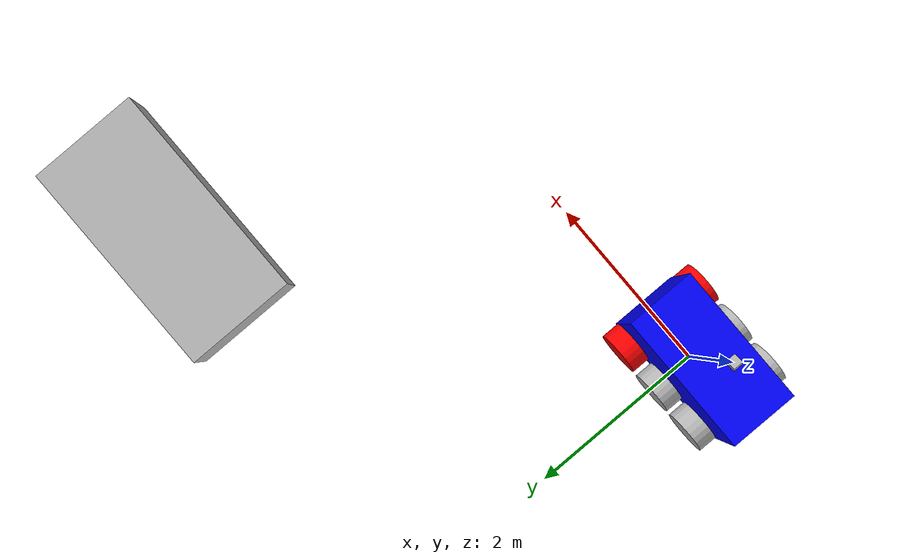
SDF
<?xml version="1.0" ?>
<sdf version="1.10">
  <model name='FLIP' canonical_link='chassis'>
    <pose>0 0 0 0 0 0</pose>

    <link name='chassis'>
      <pose relative_to='__model__'>0 0 0.625 0 0 0</pose>
      <inertial>
        <pose>0 0 0 0 0 0</pose>
        <mass>450.0</mass>
        <inertia>
          <ixx>62.438</ixx>
          <ixy>0</ixy>
          <ixz>0</ixz>
          <iyy>131.438</iyy>
          <iyz>0</iyz>
          <izz>111.188</izz>
        </inertia>
      </inertial>
      <visual name='visual'>
        <geometry><box><size>1.55 0.75 1.05</size></box></geometry>
        <material>
          <ambient>0.0 0.0 1.0 1</ambient>
          <diffuse>0.0 0.0 1.0 1</diffuse>
          <specular>0.0 0.0 1.0 1</specular>
        </material>
      </visual>
      <collision name='collision'>
        <geometry><box><size>1.55 0.75 1.05</size></box></geometry>
      </collision>
      <sensor name="imu_sensor" type="imu">
        <always_on>1</always_on>
        <update_rate>20</update_rate>
        <visualize>true</visualize>
        <topic>imu</topic>
      </sensor>
      <sensor name="gpu_lidar" type="gpu_lidar">
        <pose>0.6 0 0.3 0 0 0</pose>
        <always_on>1</always_on>
        <update_rate>10</update_rate>
        <lidar>
          <scan>
            <horizontal>
              <samples>640</samples>
              <resolution>1</resolution>
              <min_angle>-1.396263</min_angle>
              <max_angle>1.396263</max_angle>
            </horizontal>
            <vertical>
              <samples>1</samples>
              <resolution>1</resolution>
              <min_angle>0</min_angle>
              <max_angle>0</max_angle>
            </vertical>
          </scan>
          <range>
            <min>0.08</min>
            <max>10.0</max>
            <resolution>0.01</resolution>
          </range>
        </lidar>
        <visualize>true</visualize>
        <topic>lidar</topic>
      </sensor>
    </link>

    <include>
      <uri>file:///workspace/prototypes/camera/camera.sdf</uri>
      <name>camera</name>
      <pose relative_to="chassis">
        0 0 2.05 0 0.3 0
      </pose>
    </include>

		<link name='block'>
			<pose relative_to='chassis'>
				4.0 3.0 2.0 0 0 0
			</pose>
			<inertial>
				<!--inertial properties of the link mass, inertia matix-->
				<mass>5</mass>
				<inertia>
					<ixx>0.095329</ixx>
					<ixy>0</ixy>
					<ixz>0</ixz>
					<iyy>0.381317</iyy>
					<iyz>0</iyz>
					<izz>0.476646</izz>
				</inertia>
			</inertial>
			<visual name='visual'>
				<geometry>
					<box>
						<size>2.0 1.0 0.5</size>
					</box>
				</geometry>
			</visual>
			<collision name='collision'>
				<geometry>
					<box>
						<size>2.0 1.0 0.5</size>
					</box>
				</geometry>
			</collision>
		</link>

    <link name='left_back_wheel'>
      <pose relative_to="chassis">
        -0.533 0.475 -0.383 -1.5707 0 0
      </pose>
      <inertial>
        <mass>5</mass>
        <inertia>
          <ixx>0.694</ixx>
          <ixy>0</ixy>
          <ixz>0</ixz>
          <iyy>1.460</iyy>
          <iyz>0</iyz>
          <izz>1.235</izz>
        </inertia>
      </inertial>
      <visual name='visual'>
        <geometry>
          <cylinder>
            <radius>0.242</radius>
            <length>0.2</length>
          </cylinder>
        </geometry>
      </visual>
      <collision name='collision'>
        <geometry>
          <cylinder>
            <radius>0.242</radius>
            <length>0.2</length>
          </cylinder>
        </geometry>
      </collision>
    </link>

    <link name='left_middle_wheel'>
      <pose relative_to="chassis">0 0.475 -0.383 -1.5707 0 0</pose>
      <inertial><mass>5</mass><inertia><ixx>0.694</ixx><ixy>0</ixy><ixz>0</ixz><iyy>1.460</iyy><iyz>0</iyz><izz>1.235</izz></inertia></inertial>
      <visual name='visual'><geometry><cylinder><radius>0.242</radius><length>0.2</length></cylinder></geometry></visual>
      <collision name='collision'><geometry><cylinder><radius>0.242</radius><length>0.2</length></cylinder></geometry></collision>
    </link>

    <link name='right_back_wheel'>
      <pose relative_to="chassis">-0.533 -0.475 -0.383 -1.5707 0 0</pose>
      <inertial><mass>5</mass><inertia><ixx>0.694</ixx><ixy>0</ixy><ixz>0</ixz><iyy>1.460</iyy><iyz>0</iyz><izz>1.235</izz></inertia></inertial>
      <visual name='visual'><geometry><cylinder><radius>0.242</radius><length>0.2</length></cylinder></geometry></visual>
      <collision name='collision'><geometry><cylinder><radius>0.242</radius><length>0.2</length></cylinder></geometry></collision>
    </link>

    <link name='right_middle_wheel'>
      <pose relative_to="chassis">0 -0.475 -0.383 -1.5707 0 0</pose>
      <inertial><mass>5</mass><inertia><ixx>0.694</ixx><ixy>0</ixy><ixz>0</ixz><iyy>1.460</iyy><iyz>0</iyz><izz>1.235</izz></inertia></inertial>
      <visual name='visual'><geometry><cylinder><radius>0.242</radius><length>0.2</length></cylinder></geometry></visual>
      <collision name='collision'><geometry><cylinder><radius>0.242</radius><length>0.2</length></cylinder></geometry></collision>
    </link>

    <link name='left_front_steer_link'>
      <pose relative_to="chassis">0.533 0.475 -0.383 0 0 0</pose>
      <inertial><mass>1.0</mass><inertia><ixx>0.01</ixx><ixy>0</ixy><ixz>0</ixz><iyy>0.01</iyy><iyz>0</iyz><izz>0.01</izz></inertia></inertial>
    </link>

    <link name='right_front_steer_link'>
      <pose relative_to="chassis">0.533 -0.475 -0.383 0 0 0</pose>
      <inertial><mass>1.0</mass><inertia><ixx>0.01</ixx><ixy>0</ixy><ixz>0</ixz><iyy>0.01</iyy><iyz>0</iyz><izz>0.01</izz></inertia></inertial>
    </link>

    <link name='left_front_wheel'>
      <pose relative_to="left_front_steer_link">0 0 0 -1.5707 0 0</pose>
      <inertial><mass>5</mass><inertia><ixx>0.694</ixx><ixy>0</ixy><ixz>0</ixz><iyy>1.460</iyy><iyz>0</iyz><izz>1.235</izz></inertia></inertial>
      <visual name='visual'>
        <geometry><cylinder><radius>0.242</radius><length>0.2</length></cylinder></geometry>
        <material><ambient>1.0 0.0 0.0 1</ambient><diffuse>1.0 0.0 0.0 1</diffuse><specular>1.0 0.0 0.0 1</specular></material>
      </visual>
      <collision name='collision'><geometry><cylinder><radius>0.242</radius><length>0.2</length></cylinder></geometry></collision>
    </link>

    <link name='right_front_wheel'>
      <pose relative_to="right_front_steer_link">0 0 0 -1.5707 0 0</pose>
      <inertial><mass>5</mass><inertia><ixx>0.694</ixx><ixy>0</ixy><ixz>0</ixz><iyy>1.460</iyy><iyz>0</iyz><izz>1.235</izz></inertia></inertial>
      <visual name='visual'>
        <geometry><cylinder><radius>0.242</radius><length>0.2</length></cylinder></geometry>
        <material><ambient>1.0 0.0 0.0 1</ambient><diffuse>1.0 0.0 0.0 1</diffuse><specular>1.0 0.0 0.0 1</specular></material>
      </visual>
      <collision name='collision'><geometry><cylinder><radius>0.242</radius><length>0.2</length></cylinder></geometry></collision>
    </link>

    <joint name='left_back_wheel_joint' type='revolute'>
      <parent>chassis</parent><child>left_back_wheel</child>
      <axis><xyz expressed_in='__model__'>0 1 0</xyz><limit><lower>-1.79769e+308</lower><upper>1.79769e+308</upper></limit></axis>
    </joint>
    <joint name='left_middle_wheel_joint' type='revolute'>
      <parent>chassis</parent><child>left_middle_wheel</child>
      <axis><xyz expressed_in='__model__'>0 1 0</xyz><limit><lower>-1.79769e+308</lower><upper>1.79769e+308</upper></limit></axis>
    </joint>
    <joint name='right_back_wheel_joint' type='revolute'>
      <parent>chassis</parent><child>right_back_wheel</child>
      <axis><xyz expressed_in='__model__'>0 1 0</xyz><limit><lower>-1.79769e+308</lower><upper>1.79769e+308</upper></limit></axis>
    </joint>
    <joint name='right_middle_wheel_joint' type='revolute'>
      <parent>chassis</parent><child>right_middle_wheel</child>
      <axis><xyz expressed_in='__model__'>0 1 0</xyz><limit><lower>-1.79769e+308</lower><upper>1.79769e+308</upper></limit></axis>
    </joint>
    <joint name='left_front_steering_joint' type='revolute'>
      <parent>chassis</parent><child>left_front_steer_link</child>
      <axis><xyz expressed_in='__model__'>0 0 1</xyz><limit><lower>-1.0</lower><upper>1.0</upper><effort>1000000</effort></limit></axis>
    </joint>
    <joint name='right_front_steering_joint' type='revolute'>
      <parent>chassis</parent><child>right_front_steer_link</child>
      <axis><xyz expressed_in='__model__'>0 0 1</xyz><limit><lower>-1.0</lower><upper>1.0</upper><effort>1000000</effort></limit></axis>
    </joint>
    <joint name='left_front_wheel_joint' type='revolute'>
      <parent>left_front_steer_link</parent><child>left_front_wheel</child>
      <axis><xyz expressed_in='__model__'>0 1 0</xyz><limit><lower>-1.79769e+308</lower><upper>1.79769e+308</upper></limit></axis>
    </joint>
    <joint name='right_front_wheel_joint' type='revolute'>
      <parent>right_front_steer_link</parent><child>right_front_wheel</child>
      <axis><xyz expressed_in='__model__'>0 1 0</xyz><limit><lower>-1.79769e+308</lower><upper>1.79769e+308</upper></limit></axis>
    </joint>

    <plugin filename="gz-sim-ackermann-steering-system" name="gz::sim::systems::AckermannSteering">
      <left_joint>left_back_wheel_joint</left_joint>
      <left_joint>left_middle_wheel_joint</left_joint>
      <left_joint>left_front_wheel_joint</left_joint>
      <right_joint>right_back_wheel_joint</right_joint>
      <right_joint>right_middle_wheel_joint</right_joint>
      <right_joint>right_front_wheel_joint</right_joint>
      <left_steering_joint>left_front_steering_joint</left_steering_joint>
      <right_steering_joint>right_front_steering_joint</right_steering_joint>
      <wheel_base>1.066</wheel_base>
      <wheel_separation>0.95</wheel_separation>
      <kingpin_width>0.95</kingpin_width>
      <wheel_radius>0.242</wheel_radius>
      <steering_limit>1.2</steering_limit>
      <topic>/model/FLIP/cmd_vel</topic>
      <odom_topic>/model/FLIP/odometry</odom_topic>
      <tf_topic>/model/FLIP/tf</tf_topic>
      <frame_id>odom</frame_id>
      <child_frame_id>base_link</child_frame_id>
      <odom_publish_frequency>10</odom_publish_frequency>

      <!-- Uncomment for smoother motion -->
    </plugin>
  </model>
</sdf>

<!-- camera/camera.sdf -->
<sdf version="1.10">

	<!-- Camera model -->
	<model name="camera_model" canonical_link="camera_body">
		<pose>0 0 0 0 0 0</pose>
		<static>true</static>

      <link name="camera_body">
        <pose relative_to='__model__'>
      </pose>
      <visual name="camera_visual">
        <geometry>
          <box>
            <size>0.1 0.1 0.1</size>
            <!-- Adjust size as needed -->
          </box>
        </geometry>
        <material>
          <ambient>0.5 0.5 0.5 1</ambient>
          <diffuse>0.7 0.7 0.7 1</diffuse>
          <specular>0.3 0.3 0.3 1</specular>
        </material>
      </visual>
      <collision name="camera_collision">
        <geometry>
          <box>
            <size>0.1 0.1 0.1</size>
            <!-- Match visual geometry -->
          </box>
        </geometry>
      </collision>
      <inertial>
        <mass>0.5</mass>
        <!-- Adjust mass as needed -->
        <inertia>
          <ixx>0.001</ixx>
          <ixy>0</ixy>
          <ixz>0</ixz>
          <iyy>0.001</iyy>
          <iyz>0</iyz>
          <izz>0.001</izz>
        </inertia>
      </inertial>
    </link>

		<link name="camera_link">
			<sensor name="camera" type="camera">
				<pose>0 0 0 0 0 0</pose>
				<always_on>true</always_on>
				<update_rate>30</update_rate>

				<camera>
					<horizontal_fov>1.047</horizontal_fov>
					<image>
						<width>640</width>
						<height>480</height>
						<format>R8G8B8</format>
					</image>
					<clip>
						<near>0.1</near>
						<far>100</far>
					</clip>
				</camera>

				<!-- Camera topic -->
				<topic>/camera/image</topic>
			</sensor>
		</link>
	</model>

</sdf>
